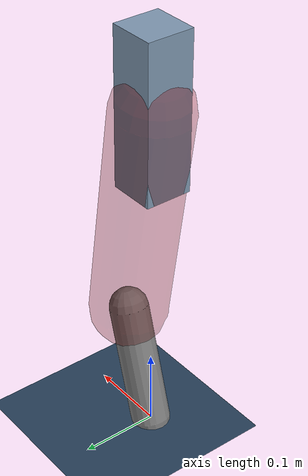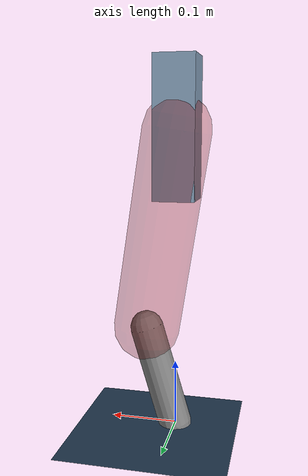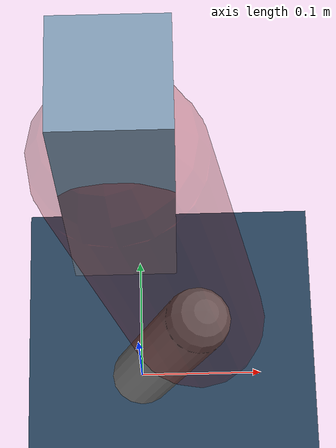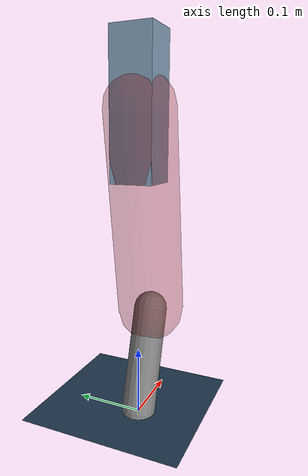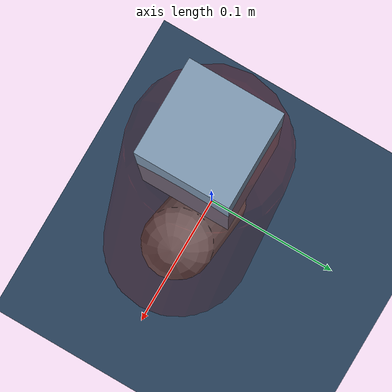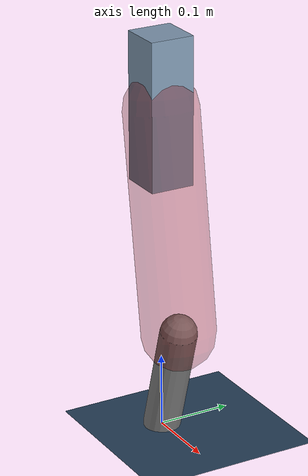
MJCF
<mujoco model="Hopper2D">
	<compiler inertiafromgeom="true" angle="radian" />
	<option timestep="0.001" integrator="implicit" cone="elliptic" solver="Newton" tolerance="1e-10" />

	<default>
		<geom contype="1" conaffinity="1" condim="3" friction="2 0.005 0.0001" solref="0.005 1" />
		<joint limited="true" damping="0.1" />
	</default>

	<asset>
		<texture name="skybox" type="skybox" builtin="gradient" rgb1=".4 .6 .8" rgb2="0 0 0" width="800" height="800" />
		<texture name="grid" type="2d" builtin="checker" rgb1=".1 .2 .3" rgb2=".2 .3 .4" width="300" height="300" mark="edge" markrgb=".2 .3 .4" />
		<material name="ground" texture="grid" texrepeat="1 1" texuniform="true" reflectance="0.1" />
		<material name="leg" rgba="0.5 0.6 0.7 1" />
	</asset>

	<worldbody>

		<geom name="floor" type="plane" size="5 5 0.25" material="ground" />

		<light directional="false" diffuse="0.8 0.8 0.8" specular="0.3 0.3 0.3" pos="0 0 2" dir="0 0 -1" />
		<light mode="targetbodycom" target="base" directional="false" diffuse="0.8 0.8 0.8" specular="0.3 0.3 0.3" pos="0 0 2" dir="0 0 -1" />

		<camera name="fixed" pos="0 -2 1" xyaxes="1 0 0 0 0 1" />
		<camera name="tracking" mode="trackcom" pos="0 -3 1" />

		<body name="root" pos="0 0 0.4475401869451507">
			<joint name="slide_x" type="slide" axis="1 0 0" range="-100 100" />
			<joint name="slide_z" type="slide" axis="0 0 1" range="0 10" />

			<body name="base" pos="0 0 0">
				<geom name="torso" type="box" size="0.03 0.03 0.1" mass="2.178" material="leg" />

				<body name="link1" pos="0 0 0" euler="0 1.418923182453256 0">
					<joint type="hinge" axis="0 -1 0" pos="0 0 0" name="hinge1" limited="true" range="-3.14 3.14" stiffness="0" damping="0.1" />
					<geom name="thigh" type="capsule" fromto="0 0 0 0.29867790206412803 0 0" size="0.05" rgba="0.5 0 0 0.3" mass="0.9851303355731457" />

					<body name="link2" pos="0.29867790206412803 0 0" euler="0 0.44029661222308886 0">
						<joint type="hinge" axis="0 -1 0" pos="0 0 0" name="hinge2" limited="true" range="-3.14 3.14" stiffness="0" damping="0.1" />
						<geom name="shank" type="capsule" fromto="0 0 0 0.15886228488102266 0 0" size="0.025" mass="0.3655760563929204" />

					</body>
				</body>
			</body>
		</body>
	</worldbody>

	<actuator>
		<motor name="torque1" joint="hinge1" ctrlrange="-25.180511366732034 25.180511366732034" ctrllimited="true" gear="1" />
		<motor name="torque2" joint="hinge2" ctrlrange="-72.68342566397914 72.68342566397914" ctrllimited="true" gear="1" />
	</actuator>
</mujoco>
